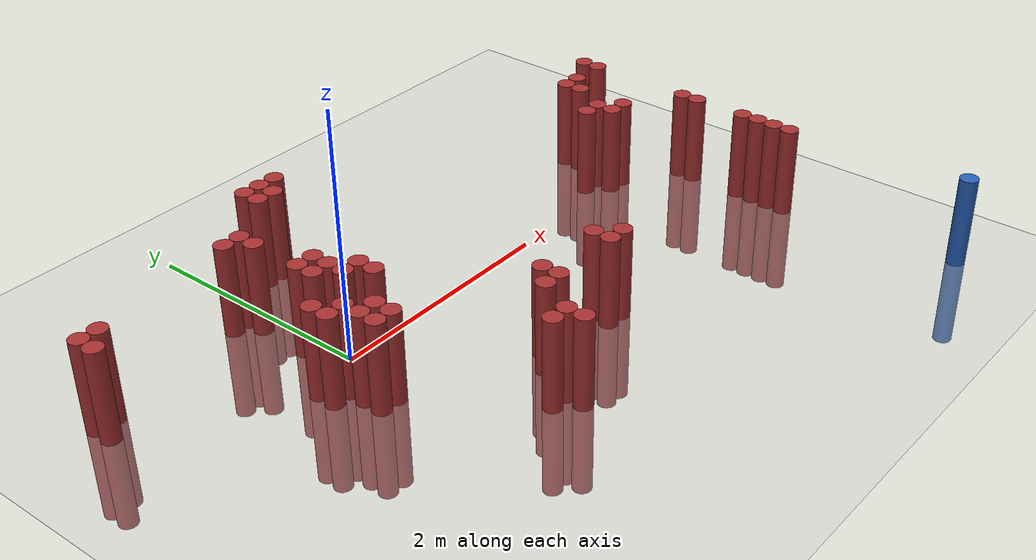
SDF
<sdf version="1.6">
 <world name="default">
  <model name="ground_plane">
   <static>1</static>
   <link name="link">
    <collision name="collision">
     <geometry><plane><normal>0 0 1</normal><size>100 100</size></plane></geometry>
     <surface><friction><ode><mu>100</mu><mu2>50</mu2></ode></friction></surface>
    </collision>
    <visual name="visual">
     <cast_shadows>0</cast_shadows>
     <geometry><plane><normal>0 0 1</normal><size>100 100</size></plane></geometry>
     <material>
      <script><uri>file://media/materials/scripts/gazebo.material</uri><name>Gazebo/Grey</name></script>
     </material>
    </visual>
   </link>
  </model>
  <model name="unit_cylinder_76">
   <static>1</static>
   <pose>3.925000 -2.825000 0.000000 0.000000 0.000000 0.000000</pose>
   <link name="link">
    <inertial>
     <mass>1</mass>
     <inertia><ixx>0.145833</ixx><ixy>0</ixy><ixz>0</ixz><iyy>0.145833</iyy><iyz>0</iyz><izz>0.125</izz></inertia>
    </inertial>
    <collision name="collision">
     <geometry><cylinder><radius>0.075000</radius><length>1.5</length></cylinder></geometry>
    </collision>
    <visual name="visual">
     <geometry><cylinder><radius>0.075000</radius><length>1.5</length></cylinder></geometry>
     <material>
      <ambient>0.152000 0.379000 0.720000 1</ambient>
      <diffuse>0.152000 0.379000 0.720000 1</diffuse>
     </material>
     <material>
      <script><name>Gazebo/Grey</name><uri>file://media/materials/scripts/gazebo.material</uri></script>
     </material>
    </visual>
   </link>
  </model>
  <model name="unit_cylinder_308">
   <static>1</static>
   <pose>-1.625000 0.625000 0.000000 0.000000 0.000000 0.000000</pose>
   <link name="link">
    <inertial>
     <mass>1</mass>
     <inertia><ixx>0.145833</ixx><ixy>0</ixy><ixz>0</ixz><iyy>0.145833</iyy><iyz>0</iyz><izz>0.125</izz></inertia>
    </inertial>
    <collision name="collision">
     <geometry><cylinder><radius>0.075000</radius><length>1.5</length></cylinder></geometry>
    </collision>
    <visual name="visual">
     <geometry><cylinder><radius>0.075000</radius><length>1.5</length></cylinder></geometry>
     <material>
      <ambient>0.648000 0.192000 0.192000 1</ambient>
      <diffuse>0.648000 0.192000 0.192000 1</diffuse>
     </material>
     <material>
      <script><name>Gazebo/Grey</name><uri>file://media/materials/scripts/gazebo.material</uri></script>
     </material>
    </visual>
   </link>
  </model>
  <model name="unit_cylinder_309">
   <static>1</static>
   <pose>-1.625000 0.775000 0.000000 0.000000 0.000000 0.000000</pose>
   <link name="link">
    <inertial>
     <mass>1</mass>
     <inertia><ixx>0.145833</ixx><ixy>0</ixy><ixz>0</ixz><iyy>0.145833</iyy><iyz>0</iyz><izz>0.125</izz></inertia>
    </inertial>
    <collision name="collision">
     <geometry><cylinder><radius>0.075000</radius><length>1.5</length></cylinder></geometry>
    </collision>
    <visual name="visual">
     <geometry><cylinder><radius>0.075000</radius><length>1.5</length></cylinder></geometry>
     <material>
      <ambient>0.648000 0.192000 0.192000 1</ambient>
      <diffuse>0.648000 0.192000 0.192000 1</diffuse>
     </material>
     <material>
      <script><name>Gazebo/Grey</name><uri>file://media/materials/scripts/gazebo.material</uri></script>
     </material>
    </visual>
   </link>
  </model>
  <model name="unit_cylinder_313">
   <static>1</static>
   <pose>-1.475000 0.775000 0.000000 0.000000 0.000000 0.000000</pose>
   <link name="link">
    <inertial>
     <mass>1</mass>
     <inertia><ixx>0.145833</ixx><ixy>0</ixy><ixz>0</ixz><iyy>0.145833</iyy><iyz>0</iyz><izz>0.125</izz></inertia>
    </inertial>
    <collision name="collision">
     <geometry><cylinder><radius>0.075000</radius><length>1.5</length></cylinder></geometry>
    </collision>
    <visual name="visual">
     <geometry><cylinder><radius>0.075000</radius><length>1.5</length></cylinder></geometry>
     <material>
      <ambient>0.648000 0.192000 0.192000 1</ambient>
      <diffuse>0.648000 0.192000 0.192000 1</diffuse>
     </material>
     <material>
      <script><name>Gazebo/Grey</name><uri>file://media/materials/scripts/gazebo.material</uri></script>
     </material>
    </visual>
   </link>
  </model>
  <model name="unit_cylinder_336">
   <static>1</static>
   <pose>-0.425000 -0.275000 0.000000 0.000000 0.000000 0.000000</pose>
   <link name="link">
    <inertial>
     <mass>1</mass>
     <inertia><ixx>0.145833</ixx><ixy>0</ixy><ixz>0</ixz><iyy>0.145833</iyy><iyz>0</iyz><izz>0.125</izz></inertia>
    </inertial>
    <collision name="collision">
     <geometry><cylinder><radius>0.075000</radius><length>1.5</length></cylinder></geometry>
    </collision>
    <visual name="visual">
     <geometry><cylinder><radius>0.075000</radius><length>1.5</length></cylinder></geometry>
     <material>
      <ambient>0.648000 0.192000 0.192000 1</ambient>
      <diffuse>0.648000 0.192000 0.192000 1</diffuse>
     </material>
     <material>
      <script><name>Gazebo/Grey</name><uri>file://media/materials/scripts/gazebo.material</uri></script>
     </material>
    </visual>
   </link>
  </model>
  <model name="unit_cylinder_337">
   <static>1</static>
   <pose>-0.425000 -0.125000 0.000000 0.000000 0.000000 0.000000</pose>
   <link name="link">
    <inertial>
     <mass>1</mass>
     <inertia><ixx>0.145833</ixx><ixy>0</ixy><ixz>0</ixz><iyy>0.145833</iyy><iyz>0</iyz><izz>0.125</izz></inertia>
    </inertial>
    <collision name="collision">
     <geometry><cylinder><radius>0.075000</radius><length>1.5</length></cylinder></geometry>
    </collision>
    <visual name="visual">
     <geometry><cylinder><radius>0.075000</radius><length>1.5</length></cylinder></geometry>
     <material>
      <ambient>0.648000 0.192000 0.192000 1</ambient>
      <diffuse>0.648000 0.192000 0.192000 1</diffuse>
     </material>
     <material>
      <script><name>Gazebo/Grey</name><uri>file://media/materials/scripts/gazebo.material</uri></script>
     </material>
    </visual>
   </link>
  </model>
  <model name="unit_cylinder_343">
   <static>1</static>
   <pose>-0.275000 -0.575000 0.000000 0.000000 0.000000 0.000000</pose>
   <link name="link">
    <inertial>
     <mass>1</mass>
     <inertia><ixx>0.145833</ixx><ixy>0</ixy><ixz>0</ixz><iyy>0.145833</iyy><iyz>0</iyz><izz>0.125</izz></inertia>
    </inertial>
    <collision name="collision">
     <geometry><cylinder><radius>0.075000</radius><length>1.5</length></cylinder></geometry>
    </collision>
    <visual name="visual">
     <geometry><cylinder><radius>0.075000</radius><length>1.5</length></cylinder></geometry>
     <material>
      <ambient>0.648000 0.192000 0.192000 1</ambient>
      <diffuse>0.648000 0.192000 0.192000 1</diffuse>
     </material>
     <material>
      <script><name>Gazebo/Grey</name><uri>file://media/materials/scripts/gazebo.material</uri></script>
     </material>
    </visual>
   </link>
  </model>
  <model name="unit_cylinder_344">
   <static>1</static>
   <pose>-0.275000 -0.425000 0.000000 0.000000 0.000000 0.000000</pose>
   <link name="link">
    <inertial>
     <mass>1</mass>
     <inertia><ixx>0.145833</ixx><ixy>0</ixy><ixz>0</ixz><iyy>0.145833</iyy><iyz>0</iyz><izz>0.125</izz></inertia>
    </inertial>
    <collision name="collision">
     <geometry><cylinder><radius>0.075000</radius><length>1.5</length></cylinder></geometry>
    </collision>
    <visual name="visual">
     <geometry><cylinder><radius>0.075000</radius><length>1.5</length></cylinder></geometry>
     <material>
      <ambient>0.648000 0.192000 0.192000 1</ambient>
      <diffuse>0.648000 0.192000 0.192000 1</diffuse>
     </material>
     <material>
      <script><name>Gazebo/Grey</name><uri>file://media/materials/scripts/gazebo.material</uri></script>
     </material>
    </visual>
   </link>
  </model>
  <model name="unit_cylinder_345">
   <static>1</static>
   <pose>-0.275000 -0.275000 0.000000 0.000000 0.000000 0.000000</pose>
   <link name="link">
    <inertial>
     <mass>1</mass>
     <inertia><ixx>0.145833</ixx><ixy>0</ixy><ixz>0</ixz><iyy>0.145833</iyy><iyz>0</iyz><izz>0.125</izz></inertia>
    </inertial>
    <collision name="collision">
     <geometry><cylinder><radius>0.075000</radius><length>1.5</length></cylinder></geometry>
    </collision>
    <visual name="visual">
     <geometry><cylinder><radius>0.075000</radius><length>1.5</length></cylinder></geometry>
     <material>
      <ambient>0.648000 0.192000 0.192000 1</ambient>
      <diffuse>0.648000 0.192000 0.192000 1</diffuse>
     </material>
     <material>
      <script><name>Gazebo/Grey</name><uri>file://media/materials/scripts/gazebo.material</uri></script>
     </material>
    </visual>
   </link>
  </model>
  <model name="unit_cylinder_346">
   <static>1</static>
   <pose>-0.275000 0.925000 0.000000 0.000000 0.000000 0.000000</pose>
   <link name="link">
    <inertial>
     <mass>1</mass>
     <inertia><ixx>0.145833</ixx><ixy>0</ixy><ixz>0</ixz><iyy>0.145833</iyy><iyz>0</iyz><izz>0.125</izz></inertia>
    </inertial>
    <collision name="collision">
     <geometry><cylinder><radius>0.075000</radius><length>1.5</length></cylinder></geometry>
    </collision>
    <visual name="visual">
     <geometry><cylinder><radius>0.075000</radius><length>1.5</length></cylinder></geometry>
     <material>
      <ambient>0.648000 0.192000 0.192000 1</ambient>
      <diffuse>0.648000 0.192000 0.192000 1</diffuse>
     </material>
     <material>
      <script><name>Gazebo/Grey</name><uri>file://media/materials/scripts/gazebo.material</uri></script>
     </material>
    </visual>
   </link>
  </model>
  <model name="unit_cylinder_348">
   <static>1</static>
   <pose>-0.125000 -0.575000 0.000000 0.000000 0.000000 0.000000</pose>
   <link name="link">
    <inertial>
     <mass>1</mass>
     <inertia><ixx>0.145833</ixx><ixy>0</ixy><ixz>0</ixz><iyy>0.145833</iyy><iyz>0</iyz><izz>0.125</izz></inertia>
    </inertial>
    <collision name="collision">
     <geometry><cylinder><radius>0.075000</radius><length>1.5</length></cylinder></geometry>
    </collision>
    <visual name="visual">
     <geometry><cylinder><radius>0.075000</radius><length>1.5</length></cylinder></geometry>
     <material>
      <ambient>0.648000 0.192000 0.192000 1</ambient>
      <diffuse>0.648000 0.192000 0.192000 1</diffuse>
     </material>
     <material>
      <script><name>Gazebo/Grey</name><uri>file://media/materials/scripts/gazebo.material</uri></script>
     </material>
    </visual>
   </link>
  </model>
  <model name="unit_cylinder_349">
   <static>1</static>
   <pose>-0.125000 -0.425000 0.000000 0.000000 0.000000 0.000000</pose>
   <link name="link">
    <inertial>
     <mass>1</mass>
     <inertia><ixx>0.145833</ixx><ixy>0</ixy><ixz>0</ixz><iyy>0.145833</iyy><iyz>0</iyz><izz>0.125</izz></inertia>
    </inertial>
    <collision name="collision">
     <geometry><cylinder><radius>0.075000</radius><length>1.5</length></cylinder></geometry>
    </collision>
    <visual name="visual">
     <geometry><cylinder><radius>0.075000</radius><length>1.5</length></cylinder></geometry>
     <material>
      <ambient>0.648000 0.192000 0.192000 1</ambient>
      <diffuse>0.648000 0.192000 0.192000 1</diffuse>
     </material>
     <material>
      <script><name>Gazebo/Grey</name><uri>file://media/materials/scripts/gazebo.material</uri></script>
     </material>
    </visual>
   </link>
  </model>
  <model name="unit_cylinder_350">
   <static>1</static>
   <pose>-0.125000 0.175000 0.000000 0.000000 0.000000 0.000000</pose>
   <link name="link">
    <inertial>
     <mass>1</mass>
     <inertia><ixx>0.145833</ixx><ixy>0</ixy><ixz>0</ixz><iyy>0.145833</iyy><iyz>0</iyz><izz>0.125</izz></inertia>
    </inertial>
    <collision name="collision">
     <geometry><cylinder><radius>0.075000</radius><length>1.5</length></cylinder></geometry>
    </collision>
    <visual name="visual">
     <geometry><cylinder><radius>0.075000</radius><length>1.5</length></cylinder></geometry>
     <material>
      <ambient>0.648000 0.192000 0.192000 1</ambient>
      <diffuse>0.648000 0.192000 0.192000 1</diffuse>
     </material>
     <material>
      <script><name>Gazebo/Grey</name><uri>file://media/materials/scripts/gazebo.material</uri></script>
     </material>
    </visual>
   </link>
  </model>
  <model name="unit_cylinder_351">
   <static>1</static>
   <pose>-0.125000 0.325000 0.000000 0.000000 0.000000 0.000000</pose>
   <link name="link">
    <inertial>
     <mass>1</mass>
     <inertia><ixx>0.145833</ixx><ixy>0</ixy><ixz>0</ixz><iyy>0.145833</iyy><iyz>0</iyz><izz>0.125</izz></inertia>
    </inertial>
    <collision name="collision">
     <geometry><cylinder><radius>0.075000</radius><length>1.5</length></cylinder></geometry>
    </collision>
    <visual name="visual">
     <geometry><cylinder><radius>0.075000</radius><length>1.5</length></cylinder></geometry>
     <material>
      <ambient>0.648000 0.192000 0.192000 1</ambient>
      <diffuse>0.648000 0.192000 0.192000 1</diffuse>
     </material>
     <material>
      <script><name>Gazebo/Grey</name><uri>file://media/materials/scripts/gazebo.material</uri></script>
     </material>
    </visual>
   </link>
  </model>
  <model name="unit_cylinder_352">
   <static>1</static>
   <pose>-0.125000 0.775000 0.000000 0.000000 0.000000 0.000000</pose>
   <link name="link">
    <inertial>
     <mass>1</mass>
     <inertia><ixx>0.145833</ixx><ixy>0</ixy><ixz>0</ixz><iyy>0.145833</iyy><iyz>0</iyz><izz>0.125</izz></inertia>
    </inertial>
    <collision name="collision">
     <geometry><cylinder><radius>0.075000</radius><length>1.5</length></cylinder></geometry>
    </collision>
    <visual name="visual">
     <geometry><cylinder><radius>0.075000</radius><length>1.5</length></cylinder></geometry>
     <material>
      <ambient>0.648000 0.192000 0.192000 1</ambient>
      <diffuse>0.648000 0.192000 0.192000 1</diffuse>
     </material>
     <material>
      <script><name>Gazebo/Grey</name><uri>file://media/materials/scripts/gazebo.material</uri></script>
     </material>
    </visual>
   </link>
  </model>
  <model name="unit_cylinder_353">
   <static>1</static>
   <pose>-0.125000 0.925000 0.000000 0.000000 0.000000 0.000000</pose>
   <link name="link">
    <inertial>
     <mass>1</mass>
     <inertia><ixx>0.145833</ixx><ixy>0</ixy><ixz>0</ixz><iyy>0.145833</iyy><iyz>0</iyz><izz>0.125</izz></inertia>
    </inertial>
    <collision name="collision">
     <geometry><cylinder><radius>0.075000</radius><length>1.5</length></cylinder></geometry>
    </collision>
    <visual name="visual">
     <geometry><cylinder><radius>0.075000</radius><length>1.5</length></cylinder></geometry>
     <material>
      <ambient>0.648000 0.192000 0.192000 1</ambient>
      <diffuse>0.648000 0.192000 0.192000 1</diffuse>
     </material>
     <material>
      <script><name>Gazebo/Grey</name><uri>file://media/materials/scripts/gazebo.material</uri></script>
     </material>
    </visual>
   </link>
  </model>
  <model name="unit_cylinder_354">
   <static>1</static>
   <pose>0.025000 0.025000 0.000000 0.000000 0.000000 0.000000</pose>
   <link name="link">
    <inertial>
     <mass>1</mass>
     <inertia><ixx>0.145833</ixx><ixy>0</ixy><ixz>0</ixz><iyy>0.145833</iyy><iyz>0</iyz><izz>0.125</izz></inertia>
    </inertial>
    <collision name="collision">
     <geometry><cylinder><radius>0.075000</radius><length>1.5</length></cylinder></geometry>
    </collision>
    <visual name="visual">
     <geometry><cylinder><radius>0.075000</radius><length>1.5</length></cylinder></geometry>
     <material>
      <ambient>0.648000 0.192000 0.192000 1</ambient>
      <diffuse>0.648000 0.192000 0.192000 1</diffuse>
     </material>
     <material>
      <script><name>Gazebo/Grey</name><uri>file://media/materials/scripts/gazebo.material</uri></script>
     </material>
    </visual>
   </link>
  </model>
  <model name="unit_cylinder_355">
   <static>1</static>
   <pose>0.025000 0.175000 0.000000 0.000000 0.000000 0.000000</pose>
   <link name="link">
    <inertial>
     <mass>1</mass>
     <inertia><ixx>0.145833</ixx><ixy>0</ixy><ixz>0</ixz><iyy>0.145833</iyy><iyz>0</iyz><izz>0.125</izz></inertia>
    </inertial>
    <collision name="collision">
     <geometry><cylinder><radius>0.075000</radius><length>1.5</length></cylinder></geometry>
    </collision>
    <visual name="visual">
     <geometry><cylinder><radius>0.075000</radius><length>1.5</length></cylinder></geometry>
     <material>
      <ambient>0.648000 0.192000 0.192000 1</ambient>
      <diffuse>0.648000 0.192000 0.192000 1</diffuse>
     </material>
     <material>
      <script><name>Gazebo/Grey</name><uri>file://media/materials/scripts/gazebo.material</uri></script>
     </material>
    </visual>
   </link>
  </model>
  <model name="unit_cylinder_356">
   <static>1</static>
   <pose>0.025000 0.325000 0.000000 0.000000 0.000000 0.000000</pose>
   <link name="link">
    <inertial>
     <mass>1</mass>
     <inertia><ixx>0.145833</ixx><ixy>0</ixy><ixz>0</ixz><iyy>0.145833</iyy><iyz>0</iyz><izz>0.125</izz></inertia>
    </inertial>
    <collision name="collision">
     <geometry><cylinder><radius>0.075000</radius><length>1.5</length></cylinder></geometry>
    </collision>
    <visual name="visual">
     <geometry><cylinder><radius>0.075000</radius><length>1.5</length></cylinder></geometry>
     <material>
      <ambient>0.648000 0.192000 0.192000 1</ambient>
      <diffuse>0.648000 0.192000 0.192000 1</diffuse>
     </material>
     <material>
      <script><name>Gazebo/Grey</name><uri>file://media/materials/scripts/gazebo.material</uri></script>
     </material>
    </visual>
   </link>
  </model>
  <model name="unit_cylinder_358">
   <static>1</static>
   <pose>0.175000 -0.125000 0.000000 0.000000 0.000000 0.000000</pose>
   <link name="link">
    <inertial>
     <mass>1</mass>
     <inertia><ixx>0.145833</ixx><ixy>0</ixy><ixz>0</ixz><iyy>0.145833</iyy><iyz>0</iyz><izz>0.125</izz></inertia>
    </inertial>
    <collision name="collision">
     <geometry><cylinder><radius>0.075000</radius><length>1.5</length></cylinder></geometry>
    </collision>
    <visual name="visual">
     <geometry><cylinder><radius>0.075000</radius><length>1.5</length></cylinder></geometry>
     <material>
      <ambient>0.648000 0.192000 0.192000 1</ambient>
      <diffuse>0.648000 0.192000 0.192000 1</diffuse>
     </material>
     <material>
      <script><name>Gazebo/Grey</name><uri>file://media/materials/scripts/gazebo.material</uri></script>
     </material>
    </visual>
   </link>
  </model>
  <model name="unit_cylinder_359">
   <static>1</static>
   <pose>0.175000 0.025000 0.000000 0.000000 0.000000 0.000000</pose>
   <link name="link">
    <inertial>
     <mass>1</mass>
     <inertia><ixx>0.145833</ixx><ixy>0</ixy><ixz>0</ixz><iyy>0.145833</iyy><iyz>0</iyz><izz>0.125</izz></inertia>
    </inertial>
    <collision name="collision">
     <geometry><cylinder><radius>0.075000</radius><length>1.5</length></cylinder></geometry>
    </collision>
    <visual name="visual">
     <geometry><cylinder><radius>0.075000</radius><length>1.5</length></cylinder></geometry>
     <material>
      <ambient>0.648000 0.192000 0.192000 1</ambient>
      <diffuse>0.648000 0.192000 0.192000 1</diffuse>
     </material>
     <material>
      <script><name>Gazebo/Grey</name><uri>file://media/materials/scripts/gazebo.material</uri></script>
     </material>
    </visual>
   </link>
  </model>
  <model name="unit_cylinder_362">
   <static>1</static>
   <pose>0.325000 1.225000 0.000000 0.000000 0.000000 0.000000</pose>
   <link name="link">
    <inertial>
     <mass>1</mass>
     <inertia><ixx>0.145833</ixx><ixy>0</ixy><ixz>0</ixz><iyy>0.145833</iyy><iyz>0</iyz><izz>0.125</izz></inertia>
    </inertial>
    <collision name="collision">
     <geometry><cylinder><radius>0.075000</radius><length>1.5</length></cylinder></geometry>
    </collision>
    <visual name="visual">
     <geometry><cylinder><radius>0.075000</radius><length>1.5</length></cylinder></geometry>
     <material>
      <ambient>0.648000 0.192000 0.192000 1</ambient>
      <diffuse>0.648000 0.192000 0.192000 1</diffuse>
     </material>
     <material>
      <script><name>Gazebo/Grey</name><uri>file://media/materials/scripts/gazebo.material</uri></script>
     </material>
    </visual>
   </link>
  </model>
  <model name="unit_cylinder_363">
   <static>1</static>
   <pose>0.325000 1.375000 0.000000 0.000000 0.000000 0.000000</pose>
   <link name="link">
    <inertial>
     <mass>1</mass>
     <inertia><ixx>0.145833</ixx><ixy>0</ixy><ixz>0</ixz><iyy>0.145833</iyy><iyz>0</iyz><izz>0.125</izz></inertia>
    </inertial>
    <collision name="collision">
     <geometry><cylinder><radius>0.075000</radius><length>1.5</length></cylinder></geometry>
    </collision>
    <visual name="visual">
     <geometry><cylinder><radius>0.075000</radius><length>1.5</length></cylinder></geometry>
     <material>
      <ambient>0.648000 0.192000 0.192000 1</ambient>
      <diffuse>0.648000 0.192000 0.192000 1</diffuse>
     </material>
     <material>
      <script><name>Gazebo/Grey</name><uri>file://media/materials/scripts/gazebo.material</uri></script>
     </material>
    </visual>
   </link>
  </model>
  <model name="unit_cylinder_367">
   <static>1</static>
   <pose>0.475000 -1.475000 0.000000 0.000000 0.000000 0.000000</pose>
   <link name="link">
    <inertial>
     <mass>1</mass>
     <inertia><ixx>0.145833</ixx><ixy>0</ixy><ixz>0</ixz><iyy>0.145833</iyy><iyz>0</iyz><izz>0.125</izz></inertia>
    </inertial>
    <collision name="collision">
     <geometry><cylinder><radius>0.075000</radius><length>1.5</length></cylinder></geometry>
    </collision>
    <visual name="visual">
     <geometry><cylinder><radius>0.075000</radius><length>1.5</length></cylinder></geometry>
     <material>
      <ambient>0.648000 0.192000 0.192000 1</ambient>
      <diffuse>0.648000 0.192000 0.192000 1</diffuse>
     </material>
     <material>
      <script><name>Gazebo/Grey</name><uri>file://media/materials/scripts/gazebo.material</uri></script>
     </material>
    </visual>
   </link>
  </model>
  <model name="unit_cylinder_368">
   <static>1</static>
   <pose>0.475000 1.225000 0.000000 0.000000 0.000000 0.000000</pose>
   <link name="link">
    <inertial>
     <mass>1</mass>
     <inertia><ixx>0.145833</ixx><ixy>0</ixy><ixz>0</ixz><iyy>0.145833</iyy><iyz>0</iyz><izz>0.125</izz></inertia>
    </inertial>
    <collision name="collision">
     <geometry><cylinder><radius>0.075000</radius><length>1.5</length></cylinder></geometry>
    </collision>
    <visual name="visual">
     <geometry><cylinder><radius>0.075000</radius><length>1.5</length></cylinder></geometry>
     <material>
      <ambient>0.648000 0.192000 0.192000 1</ambient>
      <diffuse>0.648000 0.192000 0.192000 1</diffuse>
     </material>
     <material>
      <script><name>Gazebo/Grey</name><uri>file://media/materials/scripts/gazebo.material</uri></script>
     </material>
    </visual>
   </link>
  </model>
  <model name="unit_cylinder_369">
   <static>1</static>
   <pose>0.475000 1.375000 0.000000 0.000000 0.000000 0.000000</pose>
   <link name="link">
    <inertial>
     <mass>1</mass>
     <inertia><ixx>0.145833</ixx><ixy>0</ixy><ixz>0</ixz><iyy>0.145833</iyy><iyz>0</iyz><izz>0.125</izz></inertia>
    </inertial>
    <collision name="collision">
     <geometry><cylinder><radius>0.075000</radius><length>1.5</length></cylinder></geometry>
    </collision>
    <visual name="visual">
     <geometry><cylinder><radius>0.075000</radius><length>1.5</length></cylinder></geometry>
     <material>
      <ambient>0.648000 0.192000 0.192000 1</ambient>
      <diffuse>0.648000 0.192000 0.192000 1</diffuse>
     </material>
     <material>
      <script><name>Gazebo/Grey</name><uri>file://media/materials/scripts/gazebo.material</uri></script>
     </material>
    </visual>
   </link>
  </model>
  <model name="unit_cylinder_371">
   <static>1</static>
   <pose>0.625000 -1.625000 0.000000 0.000000 0.000000 0.000000</pose>
   <link name="link">
    <inertial>
     <mass>1</mass>
     <inertia><ixx>0.145833</ixx><ixy>0</ixy><ixz>0</ixz><iyy>0.145833</iyy><iyz>0</iyz><izz>0.125</izz></inertia>
    </inertial>
    <collision name="collision">
     <geometry><cylinder><radius>0.075000</radius><length>1.5</length></cylinder></geometry>
    </collision>
    <visual name="visual">
     <geometry><cylinder><radius>0.075000</radius><length>1.5</length></cylinder></geometry>
     <material>
      <ambient>0.648000 0.192000 0.192000 1</ambient>
      <diffuse>0.648000 0.192000 0.192000 1</diffuse>
     </material>
     <material>
      <script><name>Gazebo/Grey</name><uri>file://media/materials/scripts/gazebo.material</uri></script>
     </material>
    </visual>
   </link>
  </model>
  <model name="unit_cylinder_372">
   <static>1</static>
   <pose>0.625000 -1.475000 0.000000 0.000000 0.000000 0.000000</pose>
   <link name="link">
    <inertial>
     <mass>1</mass>
     <inertia><ixx>0.145833</ixx><ixy>0</ixy><ixz>0</ixz><iyy>0.145833</iyy><iyz>0</iyz><izz>0.125</izz></inertia>
    </inertial>
    <collision name="collision">
     <geometry><cylinder><radius>0.075000</radius><length>1.5</length></cylinder></geometry>
    </collision>
    <visual name="visual">
     <geometry><cylinder><radius>0.075000</radius><length>1.5</length></cylinder></geometry>
     <material>
      <ambient>0.648000 0.192000 0.192000 1</ambient>
      <diffuse>0.648000 0.192000 0.192000 1</diffuse>
     </material>
     <material>
      <script><name>Gazebo/Grey</name><uri>file://media/materials/scripts/gazebo.material</uri></script>
     </material>
    </visual>
   </link>
  </model>
  <model name="unit_cylinder_373">
   <static>1</static>
   <pose>0.625000 1.375000 0.000000 0.000000 0.000000 0.000000</pose>
   <link name="link">
    <inertial>
     <mass>1</mass>
     <inertia><ixx>0.145833</ixx><ixy>0</ixy><ixz>0</ixz><iyy>0.145833</iyy><iyz>0</iyz><izz>0.125</izz></inertia>
    </inertial>
    <collision name="collision">
     <geometry><cylinder><radius>0.075000</radius><length>1.5</length></cylinder></geometry>
    </collision>
    <visual name="visual">
     <geometry><cylinder><radius>0.075000</radius><length>1.5</length></cylinder></geometry>
     <material>
      <ambient>0.648000 0.192000 0.192000 1</ambient>
      <diffuse>0.648000 0.192000 0.192000 1</diffuse>
     </material>
     <material>
      <script><name>Gazebo/Grey</name><uri>file://media/materials/scripts/gazebo.material</uri></script>
     </material>
    </visual>
   </link>
  </model>
  <model name="unit_cylinder_375">
   <static>1</static>
   <pose>0.775000 -1.175000 0.000000 0.000000 0.000000 0.000000</pose>
   <link name="link">
    <inertial>
     <mass>1</mass>
     <inertia><ixx>0.145833</ixx><ixy>0</ixy><ixz>0</ixz><iyy>0.145833</iyy><iyz>0</iyz><izz>0.125</izz></inertia>
    </inertial>
    <collision name="collision">
     <geometry><cylinder><radius>0.075000</radius><length>1.5</length></cylinder></geometry>
    </collision>
    <visual name="visual">
     <geometry><cylinder><radius>0.075000</radius><length>1.5</length></cylinder></geometry>
     <material>
      <ambient>0.648000 0.192000 0.192000 1</ambient>
      <diffuse>0.648000 0.192000 0.192000 1</diffuse>
     </material>
     <material>
      <script><name>Gazebo/Grey</name><uri>file://media/materials/scripts/gazebo.material</uri></script>
     </material>
    </visual>
   </link>
  </model>
  <model name="unit_cylinder_378">
   <static>1</static>
   <pose>0.925000 -1.175000 0.000000 0.000000 0.000000 0.000000</pose>
   <link name="link">
    <inertial>
     <mass>1</mass>
     <inertia><ixx>0.145833</ixx><ixy>0</ixy><ixz>0</ixz><iyy>0.145833</iyy><iyz>0</iyz><izz>0.125</izz></inertia>
    </inertial>
    <collision name="collision">
     <geometry><cylinder><radius>0.075000</radius><length>1.5</length></cylinder></geometry>
    </collision>
    <visual name="visual">
     <geometry><cylinder><radius>0.075000</radius><length>1.5</length></cylinder></geometry>
     <material>
      <ambient>0.648000 0.192000 0.192000 1</ambient>
      <diffuse>0.648000 0.192000 0.192000 1</diffuse>
     </material>
     <material>
      <script><name>Gazebo/Grey</name><uri>file://media/materials/scripts/gazebo.material</uri></script>
     </material>
    </visual>
   </link>
  </model>
  <model name="unit_cylinder_379">
   <static>1</static>
   <pose>0.925000 -1.025000 0.000000 0.000000 0.000000 0.000000</pose>
   <link name="link">
    <inertial>
     <mass>1</mass>
     <inertia><ixx>0.145833</ixx><ixy>0</ixy><ixz>0</ixz><iyy>0.145833</iyy><iyz>0</iyz><izz>0.125</izz></inertia>
    </inertial>
    <collision name="collision">
     <geometry><cylinder><radius>0.075000</radius><length>1.5</length></cylinder></geometry>
    </collision>
    <visual name="visual">
     <geometry><cylinder><radius>0.075000</radius><length>1.5</length></cylinder></geometry>
     <material>
      <ambient>0.648000 0.192000 0.192000 1</ambient>
      <diffuse>0.648000 0.192000 0.192000 1</diffuse>
     </material>
     <material>
      <script><name>Gazebo/Grey</name><uri>file://media/materials/scripts/gazebo.material</uri></script>
     </material>
    </visual>
   </link>
  </model>
  <model name="unit_cylinder_385">
   <static>1</static>
   <pose>1.525000 -1.175000 0.000000 0.000000 0.000000 0.000000</pose>
   <link name="link">
    <inertial>
     <mass>1</mass>
     <inertia><ixx>0.145833</ixx><ixy>0</ixy><ixz>0</ixz><iyy>0.145833</iyy><iyz>0</iyz><izz>0.125</izz></inertia>
    </inertial>
    <collision name="collision">
     <geometry><cylinder><radius>0.075000</radius><length>1.5</length></cylinder></geometry>
    </collision>
    <visual name="visual">
     <geometry><cylinder><radius>0.075000</radius><length>1.5</length></cylinder></geometry>
     <material>
      <ambient>0.648000 0.192000 0.192000 1</ambient>
      <diffuse>0.648000 0.192000 0.192000 1</diffuse>
     </material>
     <material>
      <script><name>Gazebo/Grey</name><uri>file://media/materials/scripts/gazebo.material</uri></script>
     </material>
    </visual>
   </link>
  </model>
  <model name="unit_cylinder_386">
   <static>1</static>
   <pose>1.525000 -1.025000 0.000000 0.000000 0.000000 0.000000</pose>
   <link name="link">
    <inertial>
     <mass>1</mass>
     <inertia><ixx>0.145833</ixx><ixy>0</ixy><ixz>0</ixz><iyy>0.145833</iyy><iyz>0</iyz><izz>0.125</izz></inertia>
    </inertial>
    <collision name="collision">
     <geometry><cylinder><radius>0.075000</radius><length>1.5</length></cylinder></geometry>
    </collision>
    <visual name="visual">
     <geometry><cylinder><radius>0.075000</radius><length>1.5</length></cylinder></geometry>
     <material>
      <ambient>0.648000 0.192000 0.192000 1</ambient>
      <diffuse>0.648000 0.192000 0.192000 1</diffuse>
     </material>
     <material>
      <script><name>Gazebo/Grey</name><uri>file://media/materials/scripts/gazebo.material</uri></script>
     </material>
    </visual>
   </link>
  </model>
  <model name="unit_cylinder_389">
   <static>1</static>
   <pose>1.675000 -1.175000 0.000000 0.000000 0.000000 0.000000</pose>
   <link name="link">
    <inertial>
     <mass>1</mass>
     <inertia><ixx>0.145833</ixx><ixy>0</ixy><ixz>0</ixz><iyy>0.145833</iyy><iyz>0</iyz><izz>0.125</izz></inertia>
    </inertial>
    <collision name="collision">
     <geometry><cylinder><radius>0.075000</radius><length>1.5</length></cylinder></geometry>
    </collision>
    <visual name="visual">
     <geometry><cylinder><radius>0.075000</radius><length>1.5</length></cylinder></geometry>
     <material>
      <ambient>0.648000 0.192000 0.192000 1</ambient>
      <diffuse>0.648000 0.192000 0.192000 1</diffuse>
     </material>
     <material>
      <script><name>Gazebo/Grey</name><uri>file://media/materials/scripts/gazebo.material</uri></script>
     </material>
    </visual>
   </link>
  </model>
  <model name="unit_cylinder_402">
   <static>1</static>
   <pose>3.025000 0.175000 0.000000 0.000000 0.000000 0.000000</pose>
   <link name="link">
    <inertial>
     <mass>1</mass>
     <inertia><ixx>0.145833</ixx><ixy>0</ixy><ixz>0</ixz><iyy>0.145833</iyy><iyz>0</iyz><izz>0.125</izz></inertia>
    </inertial>
    <collision name="collision">
     <geometry><cylinder><radius>0.075000</radius><length>1.5</length></cylinder></geometry>
    </collision>
    <visual name="visual">
     <geometry><cylinder><radius>0.075000</radius><length>1.5</length></cylinder></geometry>
     <material>
      <ambient>0.648000 0.192000 0.192000 1</ambient>
      <diffuse>0.648000 0.192000 0.192000 1</diffuse>
     </material>
     <material>
      <script><name>Gazebo/Grey</name><uri>file://media/materials/scripts/gazebo.material</uri></script>
     </material>
    </visual>
   </link>
  </model>
  <model name="unit_cylinder_403">
   <static>1</static>
   <pose>3.175000 0.025000 0.000000 0.000000 0.000000 0.000000</pose>
   <link name="link">
    <inertial>
     <mass>1</mass>
     <inertia><ixx>0.145833</ixx><ixy>0</ixy><ixz>0</ixz><iyy>0.145833</iyy><iyz>0</iyz><izz>0.125</izz></inertia>
    </inertial>
    <collision name="collision">
     <geometry><cylinder><radius>0.075000</radius><length>1.5</length></cylinder></geometry>
    </collision>
    <visual name="visual">
     <geometry><cylinder><radius>0.075000</radius><length>1.5</length></cylinder></geometry>
     <material>
      <ambient>0.648000 0.192000 0.192000 1</ambient>
      <diffuse>0.648000 0.192000 0.192000 1</diffuse>
     </material>
     <material>
      <script><name>Gazebo/Grey</name><uri>file://media/materials/scripts/gazebo.material</uri></script>
     </material>
    </visual>
   </link>
  </model>
  <model name="unit_cylinder_404">
   <static>1</static>
   <pose>3.175000 0.175000 0.000000 0.000000 0.000000 0.000000</pose>
   <link name="link">
    <inertial>
     <mass>1</mass>
     <inertia><ixx>0.145833</ixx><ixy>0</ixy><ixz>0</ixz><iyy>0.145833</iyy><iyz>0</iyz><izz>0.125</izz></inertia>
    </inertial>
    <collision name="collision">
     <geometry><cylinder><radius>0.075000</radius><length>1.5</length></cylinder></geometry>
    </collision>
    <visual name="visual">
     <geometry><cylinder><radius>0.075000</radius><length>1.5</length></cylinder></geometry>
     <material>
      <ambient>0.648000 0.192000 0.192000 1</ambient>
      <diffuse>0.648000 0.192000 0.192000 1</diffuse>
     </material>
     <material>
      <script><name>Gazebo/Grey</name><uri>file://media/materials/scripts/gazebo.material</uri></script>
     </material>
    </visual>
   </link>
  </model>
  <model name="unit_cylinder_406">
   <static>1</static>
   <pose>3.325000 0.025000 0.000000 0.000000 0.000000 0.000000</pose>
   <link name="link">
    <inertial>
     <mass>1</mass>
     <inertia><ixx>0.145833</ixx><ixy>0</ixy><ixz>0</ixz><iyy>0.145833</iyy><iyz>0</iyz><izz>0.125</izz></inertia>
    </inertial>
    <collision name="collision">
     <geometry><cylinder><radius>0.075000</radius><length>1.5</length></cylinder></geometry>
    </collision>
    <visual name="visual">
     <geometry><cylinder><radius>0.075000</radius><length>1.5</length></cylinder></geometry>
     <material>
      <ambient>0.648000 0.192000 0.192000 1</ambient>
      <diffuse>0.648000 0.192000 0.192000 1</diffuse>
     </material>
     <material>
      <script><name>Gazebo/Grey</name><uri>file://media/materials/scripts/gazebo.material</uri></script>
     </material>
    </visual>
   </link>
  </model>
  <model name="unit_cylinder_407">
   <static>1</static>
   <pose>3.325000 0.475000 0.000000 0.000000 0.000000 0.000000</pose>
   <link name="link">
    <inertial>
     <mass>1</mass>
     <inertia><ixx>0.145833</ixx><ixy>0</ixy><ixz>0</ixz><iyy>0.145833</iyy><iyz>0</iyz><izz>0.125</izz></inertia>
    </inertial>
    <collision name="collision">
     <geometry><cylinder><radius>0.075000</radius><length>1.5</length></cylinder></geometry>
    </collision>
    <visual name="visual">
     <geometry><cylinder><radius>0.075000</radius><length>1.5</length></cylinder></geometry>
     <material>
      <ambient>0.648000 0.192000 0.192000 1</ambient>
      <diffuse>0.648000 0.192000 0.192000 1</diffuse>
     </material>
     <material>
      <script><name>Gazebo/Grey</name><uri>file://media/materials/scripts/gazebo.material</uri></script>
     </material>
    </visual>
   </link>
  </model>
  <model name="unit_cylinder_408">
   <static>1</static>
   <pose>3.325000 0.625000 0.000000 0.000000 0.000000 0.000000</pose>
   <link name="link">
    <inertial>
     <mass>1</mass>
     <inertia><ixx>0.145833</ixx><ixy>0</ixy><ixz>0</ixz><iyy>0.145833</iyy><iyz>0</iyz><izz>0.125</izz></inertia>
    </inertial>
    <collision name="collision">
     <geometry><cylinder><radius>0.075000</radius><length>1.5</length></cylinder></geometry>
    </collision>
    <visual name="visual">
     <geometry><cylinder><radius>0.075000</radius><length>1.5</length></cylinder></geometry>
     <material>
      <ambient>0.648000 0.192000 0.192000 1</ambient>
      <diffuse>0.648000 0.192000 0.192000 1</diffuse>
     </material>
     <material>
      <script><name>Gazebo/Grey</name><uri>file://media/materials/scripts/gazebo.material</uri></script>
     </material>
    </visual>
   </link>
  </model>
  <model name="unit_cylinder_411">
   <static>1</static>
   <pose>3.475000 0.625000 0.000000 0.000000 0.000000 0.000000</pose>
   <link name="link">
    <inertial>
     <mass>1</mass>
     <inertia><ixx>0.145833</ixx><ixy>0</ixy><ixz>0</ixz><iyy>0.145833</iyy><iyz>0</iyz><izz>0.125</izz></inertia>
    </inertial>
    <collision name="collision">
     <geometry><cylinder><radius>0.075000</radius><length>1.5</length></cylinder></geometry>
    </collision>
    <visual name="visual">
     <geometry><cylinder><radius>0.075000</radius><length>1.5</length></cylinder></geometry>
     <material>
      <ambient>0.648000 0.192000 0.192000 1</ambient>
      <diffuse>0.648000 0.192000 0.192000 1</diffuse>
     </material>
     <material>
      <script><name>Gazebo/Grey</name><uri>file://media/materials/scripts/gazebo.material</uri></script>
     </material>
    </visual>
   </link>
  </model>
  <model name="unit_cylinder_420">
   <static>1</static>
   <pose>3.775000 -1.325000 0.000000 0.000000 0.000000 0.000000</pose>
   <link name="link">
    <inertial>
     <mass>1</mass>
     <inertia><ixx>0.145833</ixx><ixy>0</ixy><ixz>0</ixz><iyy>0.145833</iyy><iyz>0</iyz><izz>0.125</izz></inertia>
    </inertial>
    <collision name="collision">
     <geometry><cylinder><radius>0.075000</radius><length>1.5</length></cylinder></geometry>
    </collision>
    <visual name="visual">
     <geometry><cylinder><radius>0.075000</radius><length>1.5</length></cylinder></geometry>
     <material>
      <ambient>0.648000 0.192000 0.192000 1</ambient>
      <diffuse>0.648000 0.192000 0.192000 1</diffuse>
     </material>
     <material>
      <script><name>Gazebo/Grey</name><uri>file://media/materials/scripts/gazebo.material</uri></script>
     </material>
    </visual>
   </link>
  </model>
  <model name="unit_cylinder_421">
   <static>1</static>
   <pose>3.775000 -1.175000 0.000000 0.000000 0.000000 0.000000</pose>
   <link name="link">
    <inertial>
     <mass>1</mass>
     <inertia><ixx>0.145833</ixx><ixy>0</ixy><ixz>0</ixz><iyy>0.145833</iyy><iyz>0</iyz><izz>0.125</izz></inertia>
    </inertial>
    <collision name="collision">
     <geometry><cylinder><radius>0.075000</radius><length>1.5</length></cylinder></geometry>
    </collision>
    <visual name="visual">
     <geometry><cylinder><radius>0.075000</radius><length>1.5</length></cylinder></geometry>
     <material>
      <ambient>0.648000 0.192000 0.192000 1</ambient>
      <diffuse>0.648000 0.192000 0.192000 1</diffuse>
     </material>
     <material>
      <script><name>Gazebo/Grey</name><uri>file://media/materials/scripts/gazebo.material</uri></script>
     </material>
    </visual>
   </link>
  </model>
  <model name="unit_cylinder_422">
   <static>1</static>
   <pose>3.775000 -1.025000 0.000000 0.000000 0.000000 0.000000</pose>
   <link name="link">
    <inertial>
     <mass>1</mass>
     <inertia><ixx>0.145833</ixx><ixy>0</ixy><ixz>0</ixz><iyy>0.145833</iyy><iyz>0</iyz><izz>0.125</izz></inertia>
    </inertial>
    <collision name="collision">
     <geometry><cylinder><radius>0.075000</radius><length>1.5</length></cylinder></geometry>
    </collision>
    <visual name="visual">
     <geometry><cylinder><radius>0.075000</radius><length>1.5</length></cylinder></geometry>
     <material>
      <ambient>0.648000 0.192000 0.192000 1</ambient>
      <diffuse>0.648000 0.192000 0.192000 1</diffuse>
     </material>
     <material>
      <script><name>Gazebo/Grey</name><uri>file://media/materials/scripts/gazebo.material</uri></script>
     </material>
    </visual>
   </link>
  </model>
  <model name="unit_cylinder_423">
   <static>1</static>
   <pose>3.775000 -0.875000 0.000000 0.000000 0.000000 0.000000</pose>
   <link name="link">
    <inertial>
     <mass>1</mass>
     <inertia><ixx>0.145833</ixx><ixy>0</ixy><ixz>0</ixz><iyy>0.145833</iyy><iyz>0</iyz><izz>0.125</izz></inertia>
    </inertial>
    <collision name="collision">
     <geometry><cylinder><radius>0.075000</radius><length>1.5</length></cylinder></geometry>
    </collision>
    <visual name="visual">
     <geometry><cylinder><radius>0.075000</radius><length>1.5</length></cylinder></geometry>
     <material>
      <ambient>0.648000 0.192000 0.192000 1</ambient>
      <diffuse>0.648000 0.192000 0.192000 1</diffuse>
     </material>
     <material>
      <script><name>Gazebo/Grey</name><uri>file://media/materials/scripts/gazebo.material</uri></script>
     </material>
    </visual>
   </link>
  </model>
  <model name="unit_cylinder_424">
   <static>1</static>
   <pose>3.775000 -0.425000 0.000000 0.000000 0.000000 0.000000</pose>
   <link name="link">
    <inertial>
     <mass>1</mass>
     <inertia><ixx>0.145833</ixx><ixy>0</ixy><ixz>0</ixz><iyy>0.145833</iyy><iyz>0</iyz><izz>0.125</izz></inertia>
    </inertial>
    <collision name="collision">
     <geometry><cylinder><radius>0.075000</radius><length>1.5</length></cylinder></geometry>
    </collision>
    <visual name="visual">
     <geometry><cylinder><radius>0.075000</radius><length>1.5</length></cylinder></geometry>
     <material>
      <ambient>0.648000 0.192000 0.192000 1</ambient>
      <diffuse>0.648000 0.192000 0.192000 1</diffuse>
     </material>
     <material>
      <script><name>Gazebo/Grey</name><uri>file://media/materials/scripts/gazebo.material</uri></script>
     </material>
    </visual>
   </link>
  </model>
  <model name="unit_cylinder_425">
   <static>1</static>
   <pose>3.775000 -0.275000 0.000000 0.000000 0.000000 0.000000</pose>
   <link name="link">
    <inertial>
     <mass>1</mass>
     <inertia><ixx>0.145833</ixx><ixy>0</ixy><ixz>0</ixz><iyy>0.145833</iyy><iyz>0</iyz><izz>0.125</izz></inertia>
    </inertial>
    <collision name="collision">
     <geometry><cylinder><radius>0.075000</radius><length>1.5</length></cylinder></geometry>
    </collision>
    <visual name="visual">
     <geometry><cylinder><radius>0.075000</radius><length>1.5</length></cylinder></geometry>
     <material>
      <ambient>0.648000 0.192000 0.192000 1</ambient>
      <diffuse>0.648000 0.192000 0.192000 1</diffuse>
     </material>
     <material>
      <script><name>Gazebo/Grey</name><uri>file://media/materials/scripts/gazebo.material</uri></script>
     </material>
    </visual>
   </link>
  </model>
  <model name="unit_cylinder_426">
   <static>1</static>
   <pose>3.775000 0.625000 0.000000 0.000000 0.000000 0.000000</pose>
   <link name="link">
    <inertial>
     <mass>1</mass>
     <inertia><ixx>0.145833</ixx><ixy>0</ixy><ixz>0</ixz><iyy>0.145833</iyy><iyz>0</iyz><izz>0.125</izz></inertia>
    </inertial>
    <collision name="collision">
     <geometry><cylinder><radius>0.075000</radius><length>1.5</length></cylinder></geometry>
    </collision>
    <visual name="visual">
     <geometry><cylinder><radius>0.075000</radius><length>1.5</length></cylinder></geometry>
     <material>
      <ambient>0.648000 0.192000 0.192000 1</ambient>
      <diffuse>0.648000 0.192000 0.192000 1</diffuse>
     </material>
     <material>
      <script><name>Gazebo/Grey</name><uri>file://media/materials/scripts/gazebo.material</uri></script>
     </material>
    </visual>
   </link>
  </model>
  <model name="unit_cylinder_427">
   <static>1</static>
   <pose>3.775000 0.775000 0.000000 0.000000 0.000000 0.000000</pose>
   <link name="link">
    <inertial>
     <mass>1</mass>
     <inertia><ixx>0.145833</ixx><ixy>0</ixy><ixz>0</ixz><iyy>0.145833</iyy><iyz>0</iyz><izz>0.125</izz></inertia>
    </inertial>
    <collision name="collision">
     <geometry><cylinder><radius>0.075000</radius><length>1.5</length></cylinder></geometry>
    </collision>
    <visual name="visual">
     <geometry><cylinder><radius>0.075000</radius><length>1.5</length></cylinder></geometry>
     <material>
      <ambient>0.648000 0.192000 0.192000 1</ambient>
      <diffuse>0.648000 0.192000 0.192000 1</diffuse>
     </material>
     <material>
      <script><name>Gazebo/Grey</name><uri>file://media/materials/scripts/gazebo.material</uri></script>
     </material>
    </visual>
   </link>
  </model>
 </world>
</sdf>
